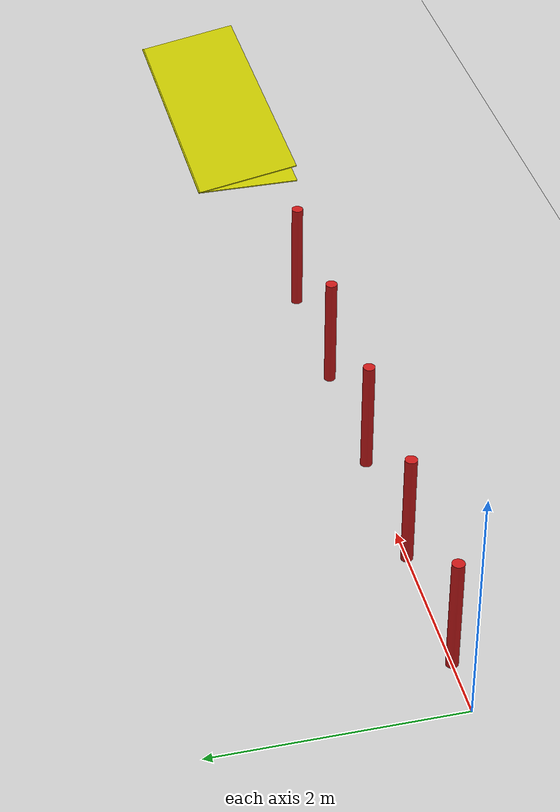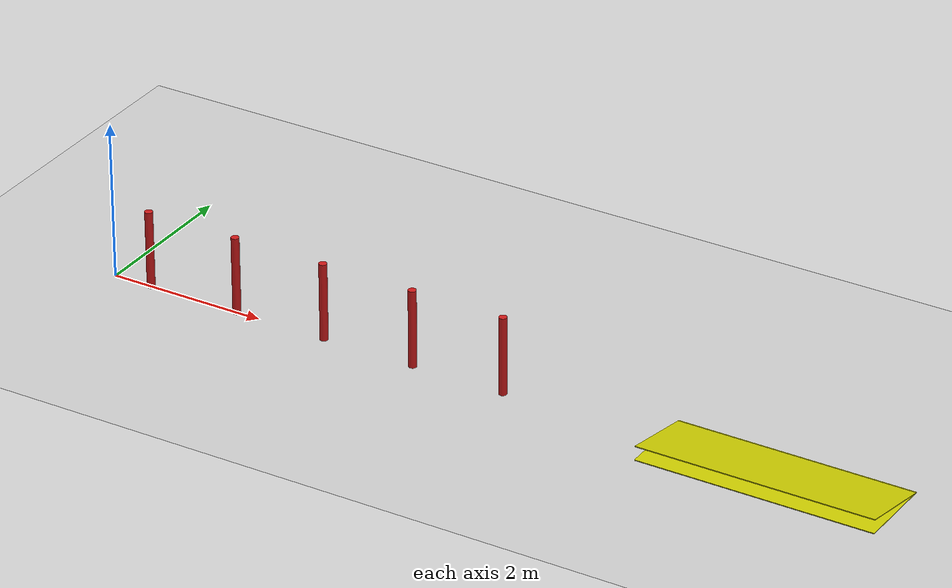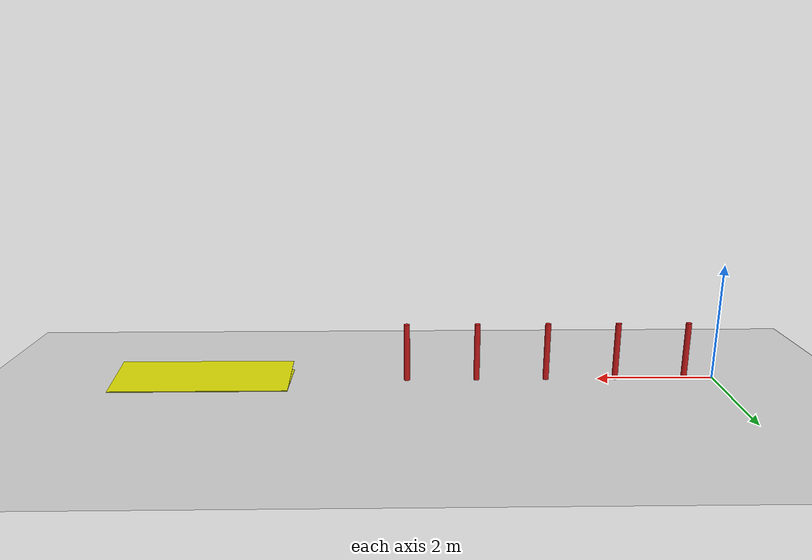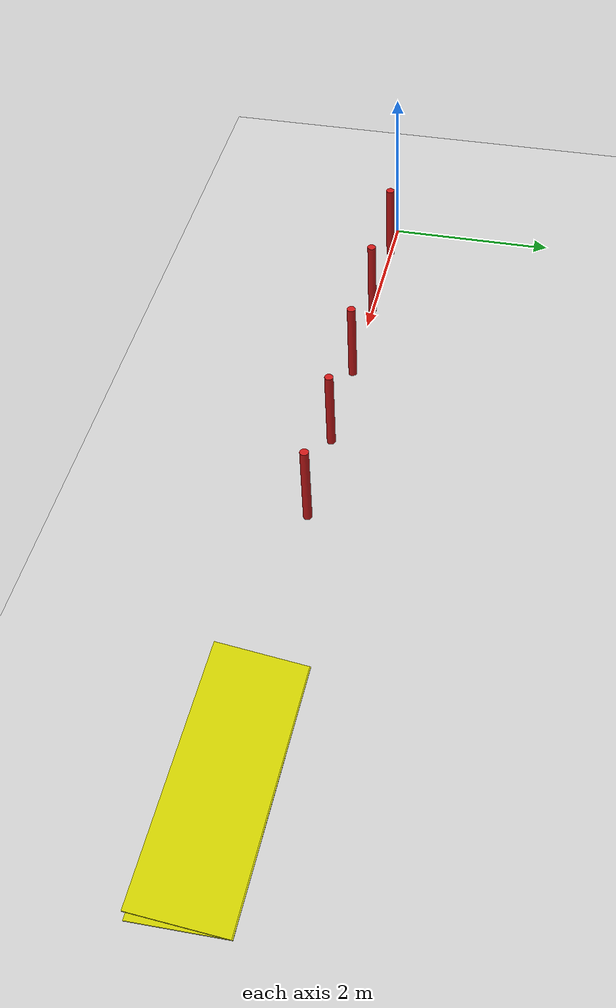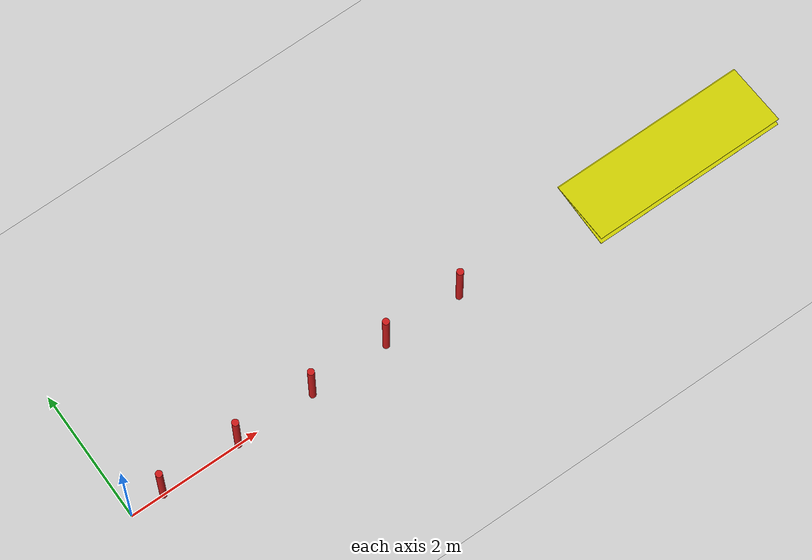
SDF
<?xml version="1.0" ?>
<sdf version="1.5">
    <world name="default">

        <physics type="ode">
        <max_step_size>0.0002</max_step_size>
        <real_time_factor>1</real_time_factor>
        <real_time_update_rate>5000</real_time_update_rate>
        <gravity>0 0 -9.81</gravity>
            <ode>
                <solver>
                <type>quick</type>
                <iters>50</iters>
                <sor>1.3</sor>
                </solver>
                <constraints>
                <cfm>0.0</cfm>
                <erp>0.2</erp>
                <contact_max_correcting_vel>10.0</contact_max_correcting_vel>
                <contact_surface_layer>0.001</contact_surface_layer>
                </constraints>
            </ode>
        </physics>

        <scene>
        <sky>
            <clouds>
                <speed>12</speed>
            </clouds>
        </sky>
        </scene>
        <!-- A global light source -->
        <include>
            <uri>model://sun</uri>
        </include>
        <!-- A ground plane -->
        <include>
            <uri>model://ground_plane</uri>
        </include>

        <!-- 障碍物模型 -->
        <model name="obstacle_course">
            <static>true</static>

            <!-- 第一根竖杆 -->
            <link name="pole_1">
                <pose>0.5 0 0.5 0 0 0</pose> <!-- 底座中心高度0.5m -->
                <collision name="pole_collision">
                    <geometry>
                        <cylinder>
                            <radius>0.05</radius> <!-- 杆半径5cm -->
                            <length>1.0</length>  <!-- 杆高1m -->
                        </cylinder>
                    </geometry>
                </collision>
                <visual name="pole_visual">
                    <geometry>
                        <cylinder>
                            <radius>0.05</radius>
                            <length>1.0</length>
                        </cylinder>
                    </geometry>
                    <material>
                        <ambient>0.8 0.1 0.1 1</ambient> <!-- 红色 -->
                    </material>
                </visual>
            </link>

            <!-- 第二根竖杆 -->
            <link name="pole_2">
                <pose>1.7 0 0.5 0 0 0</pose> <!-- x轴间距1.2m -->
                <collision name="pole_collision">
                    <geometry>
                        <cylinder>
                            <radius>0.05</radius> <!-- 杆半径5cm -->
                            <length>1.0</length>  <!-- 杆高1m -->
                        </cylinder>
                    </geometry>
                </collision>
                <visual name="pole_visual">
                    <geometry>
                        <cylinder>
                            <radius>0.05</radius>
                            <length>1.0</length>
                        </cylinder>
                    </geometry>
                    <material>
                        <ambient>0.8 0.1 0.1 1</ambient> <!-- 红色 -->
                    </material>
                </visual>
            </link>

            <!-- 第三根竖杆 -->
            <link name="pole_3">
                <pose>2.9 0 0.5 0 0 0</pose> <!-- x轴间距1.2m -->
                <collision name="pole_collision">
                    <geometry>
                        <cylinder>
                            <radius>0.05</radius> <!-- 杆半径5cm -->
                            <length>1.0</length>  <!-- 杆高1m -->
                        </cylinder>
                    </geometry>
                </collision>
                <visual name="pole_visual">
                    <geometry>
                        <cylinder>
                            <radius>0.05</radius>
                            <length>1.0</length>
                        </cylinder>
                    </geometry>
                    <material>
                        <ambient>0.8 0.1 0.1 1</ambient> <!-- 红色 -->
                    </material>
                </visual>
            </link>

            <!-- 第四根竖杆 -->
            <link name="pole_4">
                <pose>4.1 0 0.5 0 0 0</pose> <!-- x轴间距1.2m -->
                <collision name="pole_collision">
                    <geometry>
                        <cylinder>
                            <radius>0.05</radius> <!-- 杆半径5cm -->
                            <length>1.0</length>  <!-- 杆高1m -->
                        </cylinder>
                    </geometry>
                </collision>
                <visual name="pole_visual">
                    <geometry>
                        <cylinder>
                            <radius>0.05</radius>
                            <length>1.0</length>
                        </cylinder>
                    </geometry>
                    <material>
                        <ambient>0.8 0.1 0.1 1</ambient> <!-- 红色 -->
                    </material>
                </visual>
            </link>

            <!-- 第五根竖杆 -->
            <link name="pole_5">
                <pose>5.3 0 0.5 0 0 0</pose> <!-- x轴间距1.2m -->
                <collision name="pole_collision">
                    <geometry>
                        <cylinder>
                            <radius>0.05</radius> <!-- 杆半径5cm -->
                            <length>1.0</length>  <!-- 杆高1m -->
                        </cylinder>
                    </geometry>
                </collision>
                <visual name="pole_visual">
                    <geometry>
                        <cylinder>
                            <radius>0.05</radius>
                            <length>1.0</length>
                        </cylinder>
                    </geometry>
                    <material>
                        <ambient>0.8 0.1 0.1 1</ambient> <!-- 红色 -->
                    </material>
                </visual>
            </link>

            <!-- 斜坡 - 三棱柱形状 -->
            <link name="ramp">
                <pose>8.8 0 0.0 0 0 1.5708</pose> <!-- x轴方向后移2m，旋转90度使宽度朝向x轴 -->
                <collision name="ramp_collision">
                    <geometry>
                        <box>
                            <size>1.0 3.0 0.01</size> <!-- 宽1m，长3m，底板厚度1cm -->
                        </box>
                    </geometry>
                    <pose>0 0 0.005 0 0 0</pose> <!-- 底板居中 -->
                </collision>
                <visual name="ramp_visual_base">
                    <geometry>
                        <box>
                            <size>1.0 3.0 0.01</size>
                        </box>
                    </geometry>
                    <pose>0 0 0.005 0 0 0</pose>
                    <material>
                        <ambient>0.8 0.8 0.0 1</ambient>  <!-- 黄色 -->
                        <diffuse>0.8 0.8 0.0 1</diffuse>
                    </material>
                </visual>

                <!-- 斜面部分 -->
                <collision name="ramp_collision_slope">
                    <geometry>
                        <box>
                            <size>1.0 3.0 0.01</size>
                        </box>
                    </geometry>
                    <pose>0 0 0.090824 0 0.174533 0</pose> <!-- 斜面角度10度，中心高度约是长度一半*sin(10°) -->
                </collision>
                <visual name="ramp_visual_slope">
                    <geometry>
                        <box>
                            <size>1.0 3.0 0.01</size>
                        </box>
                    </geometry>
                    <pose>0 0 0.090824 0 0.174533 0</pose>
                    <material>
                        <ambient>0.8 0.8 0.0 1</ambient>  <!-- 黄色 -->
                        <diffuse>0.8 0.8 0.0 1</diffuse>
                    </material>
                </visual>
            </link>

        </model>

    </world>
</sdf>
